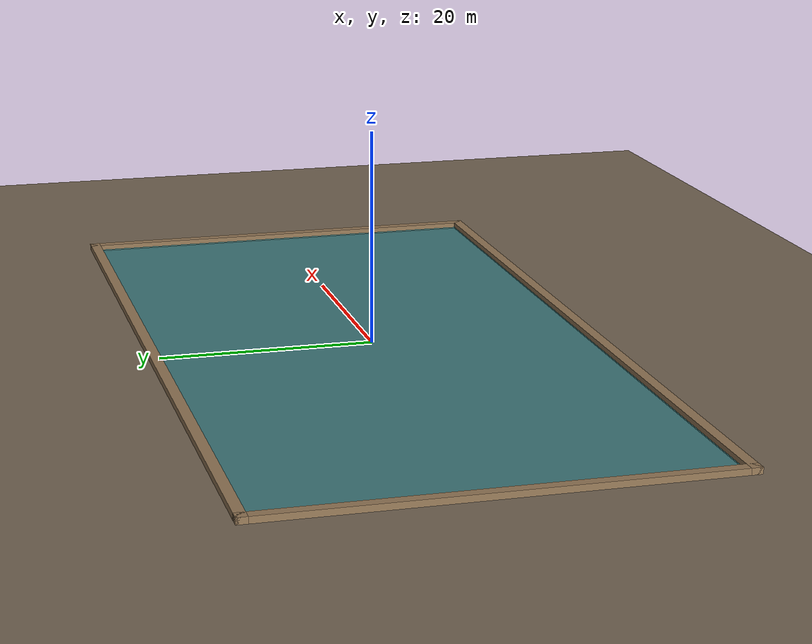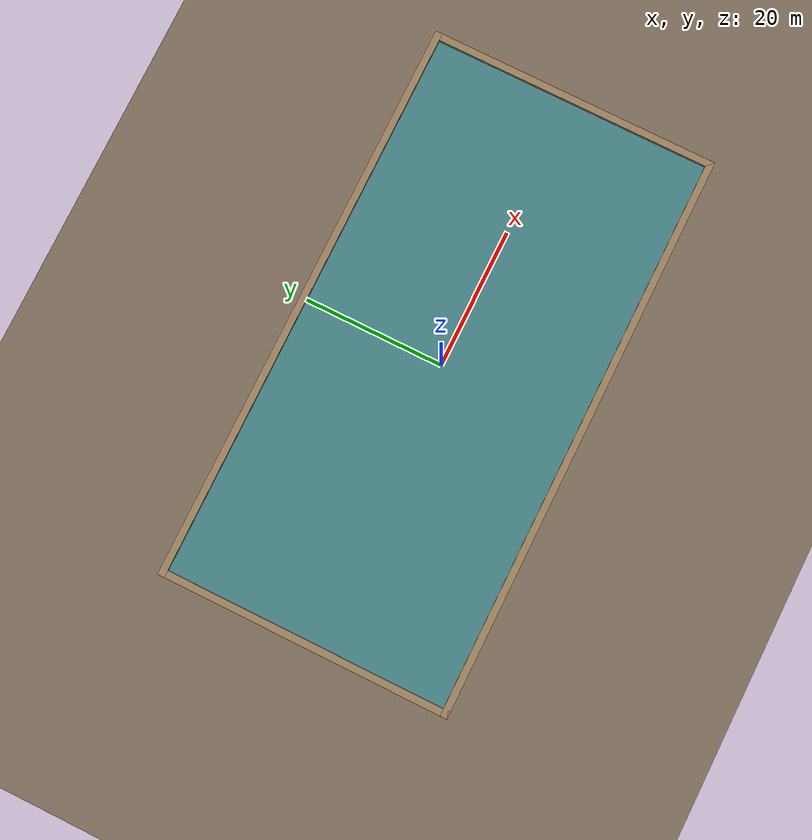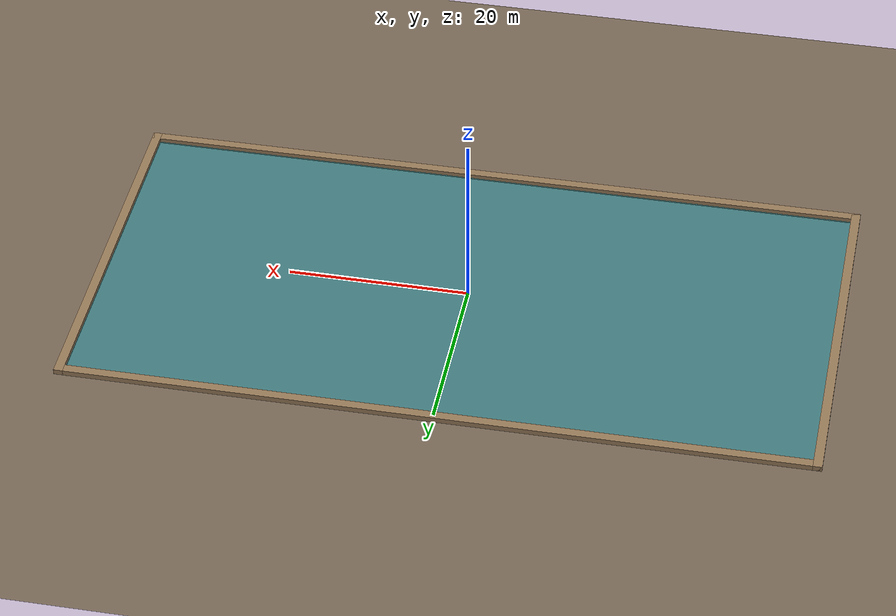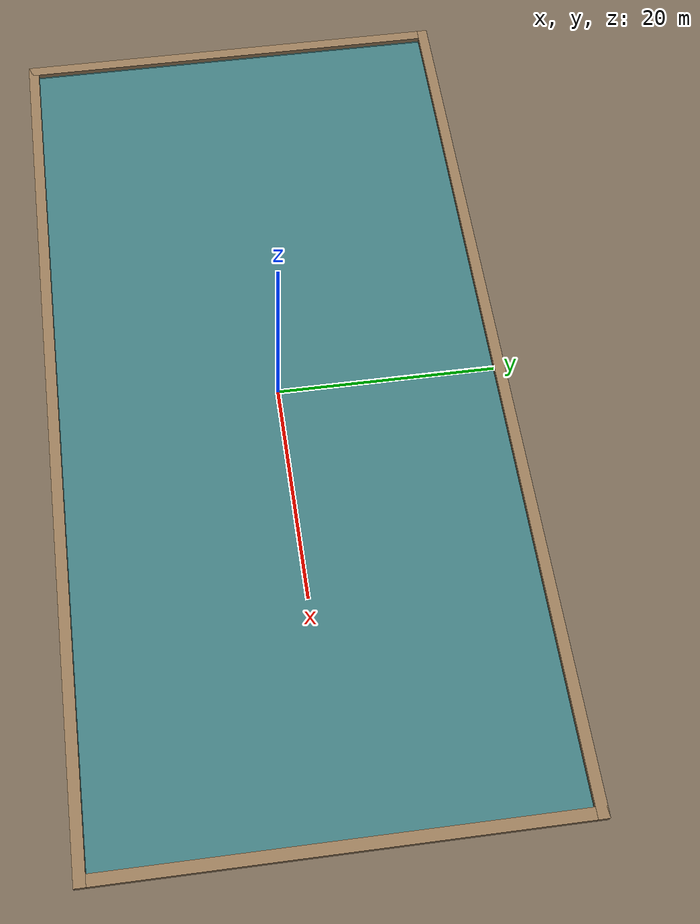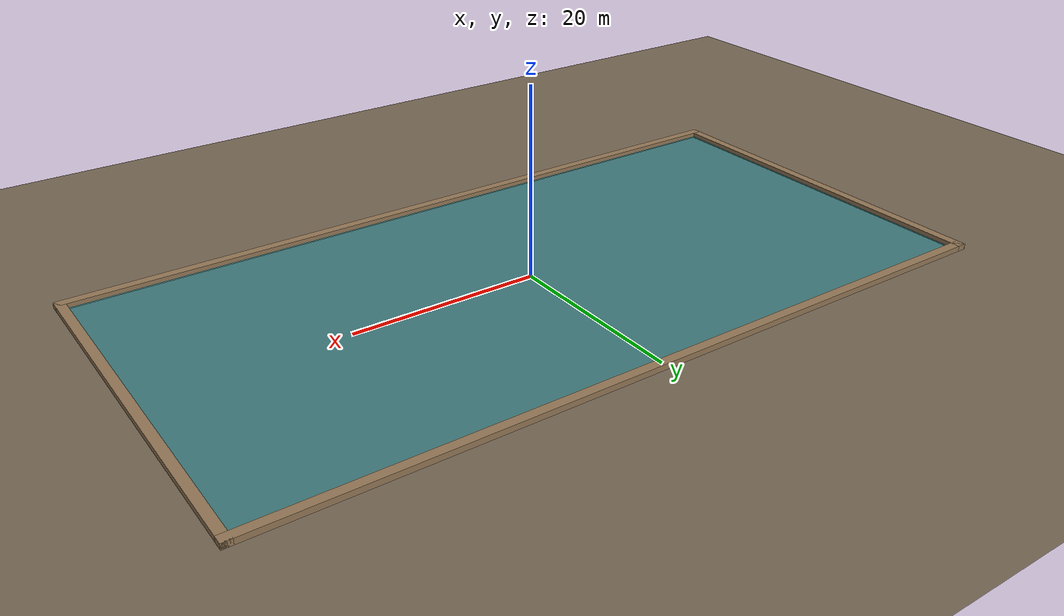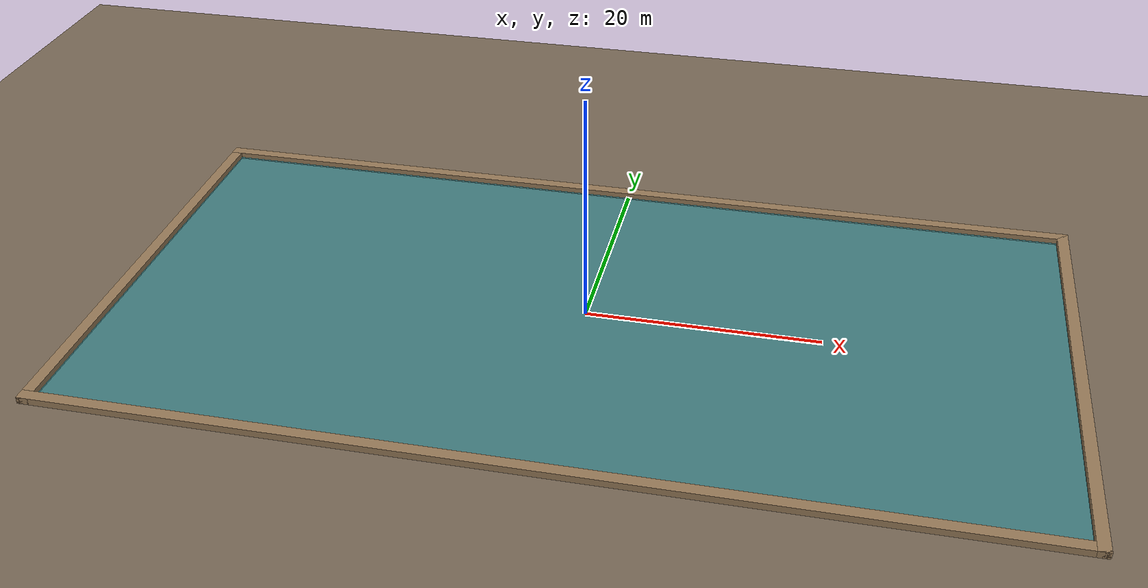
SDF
<?xml version="1.0" ?>
<sdf version="1.10">
  <world name="shrimp_pond_static">
    <!-- Stability mode for controller tuning: neutral gravity -->
    <gravity>0 0 0</gravity>
    <atmosphere type="adiabatic"/>
    <!-- Corriente ambiental muy suave para dar dinámica mínima -->
    <wind>
      <linear_velocity>0.0 0.0 0.0</linear_velocity>
    </wind>

    <physics name="default_physics" default="true" type="dart">
      <max_step_size>0.001</max_step_size>
      <real_time_factor>1.0</real_time_factor>
      <real_time_update_rate>1000</real_time_update_rate>
    </physics>

    <scene>
      <ambient>0.55 0.62 0.68 1</ambient>
      <background>0.78 0.86 0.92 1</background>
      <shadows>true</shadows>
      <fog>
        <color>0.80 0.88 0.93 1</color>
        <type>linear</type>
        <start>40</start>
        <end>250</end>
        <density>0.005</density>
      </fog>
    </scene>

    <light type="directional" name="sun">
      <cast_shadows>true</cast_shadows>
      <pose>0 0 20 0 0 0</pose>
      <diffuse>0.95 0.95 0.90 1</diffuse>
      <specular>0.20 0.20 0.20 1</specular>
      <direction>-0.35 0.15 -0.92</direction>
    </light>

    <!-- Suelo general del mundo -->
    <model name="ground_plane">
      <static>true</static>
      <link name="link">
        <visual name="visual">
          <geometry>
            <plane>
              <normal>0 0 1</normal>
              <size>1000 1000</size>
            </plane>
          </geometry>
          <material>
            <ambient>0.42 0.37 0.30 1</ambient>
            <diffuse>0.46 0.40 0.33 1</diffuse>
          </material>
        </visual>
      </link>
    </model>

    <!-- Fondo de la camaronera (profundidad aprox. 1.2 m) -->
    <model name="pond_bottom">
      <static>true</static>
      <pose>0 0 -1.2 0 0 0</pose>
      <link name="link">
        <visual name="visual">
          <geometry>
            <box>
              <size>80 40 0.2</size>
            </box>
          </geometry>
          <material>
            <ambient>0.36 0.30 0.22 1</ambient>
            <diffuse>0.40 0.33 0.25 1</diffuse>
          </material>
        </visual>
      </link>
    </model>

    <!-- Superficie de agua estática, sin olas -->
    <model name="water_surface">
      <static>true</static>
      <pose>0 0 0 0 0 0</pose>
      <link name="link">
        <visual name="visual">
          <geometry>
            <plane>
              <normal>0 0 1</normal>
              <size>80 40</size>
            </plane>
          </geometry>
          <material>
            <ambient>0.10 0.45 0.56 0.55</ambient>
            <diffuse>0.12 0.58 0.66 0.55</diffuse>
            <specular>0.08 0.08 0.08 1.0</specular>
          </material>
        </visual>
      </link>
    </model>

    <!-- Bordes de tierra de la camaronera -->
    <model name="pond_border_north">
      <static>true</static>
      <pose>0 20.5 -0.5 0 0 0</pose>
      <link name="link">
        <visual name="visual">
          <geometry>
            <box>
              <size>82 1 2</size>
            </box>
          </geometry>
          <material>
            <ambient>0.52 0.42 0.30 1</ambient>
            <diffuse>0.58 0.47 0.34 1</diffuse>
          </material>
        </visual>
      </link>
    </model>

    <model name="pond_border_south">
      <static>true</static>
      <pose>0 -20.5 -0.5 0 0 0</pose>
      <link name="link">
        <visual name="visual">
          <geometry>
            <box>
              <size>82 1 2</size>
            </box>
          </geometry>
          <material>
            <ambient>0.52 0.42 0.30 1</ambient>
            <diffuse>0.58 0.47 0.34 1</diffuse>
          </material>
        </visual>
      </link>
    </model>

    <model name="pond_border_east">
      <static>true</static>
      <pose>40.5 0 -0.5 0 0 0</pose>
      <link name="link">
        <visual name="visual">
          <geometry>
            <box>
              <size>1 42 2</size>
            </box>
          </geometry>
          <material>
            <ambient>0.52 0.42 0.30 1</ambient>
            <diffuse>0.58 0.47 0.34 1</diffuse>
          </material>
        </visual>
      </link>
    </model>

    <model name="pond_border_west">
      <static>true</static>
      <pose>-40.5 0 -0.5 0 0 0</pose>
      <link name="link">
        <visual name="visual">
          <geometry>
            <box>
              <size>1 42 2</size>
            </box>
          </geometry>
          <material>
            <ambient>0.52 0.42 0.30 1</ambient>
            <diffuse>0.58 0.47 0.34 1</diffuse>
          </material>
        </visual>
      </link>
    </model>

    <!-- Plugins base Gazebo Harmonic -->
    <plugin filename="libgz-sim-physics-system.so" name="gz::sim::systems::Physics"/>
    <plugin filename="libgz-sim-user-commands-system.so" name="gz::sim::systems::UserCommands"/>
    <plugin filename="libgz-sim-scene-broadcaster-system.so" name="gz::sim::systems::SceneBroadcaster"/>
    <plugin filename="libgz-sim-apply-link-wrench-system.so" name="gz::sim::systems::ApplyLinkWrench"/>

    <!-- Buoyancy disabled in stability mode -->

    <gui fullscreen="0">
      <camera name="user_camera">
        <pose>32 -26 18 0.0 0.45 2.35</pose>
      </camera>
    </gui>
  </world>
</sdf>
